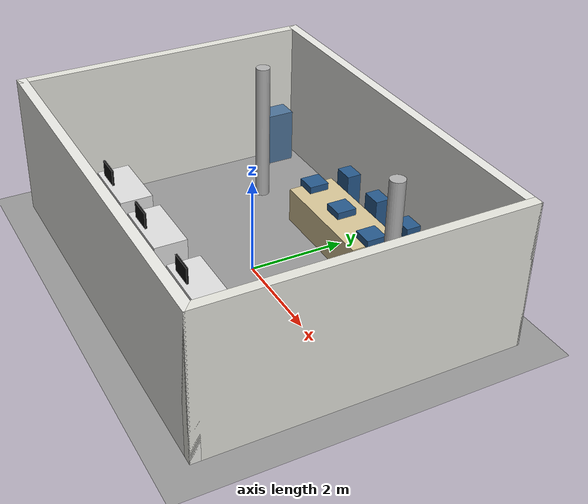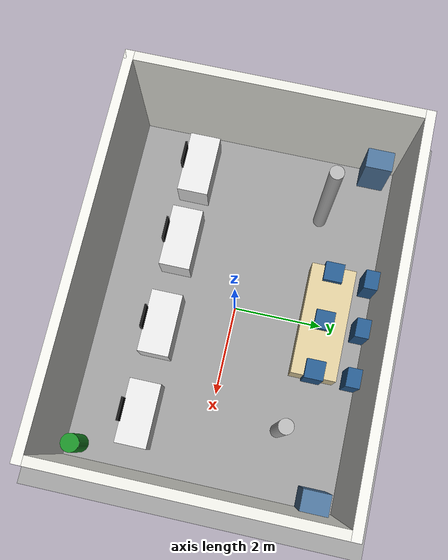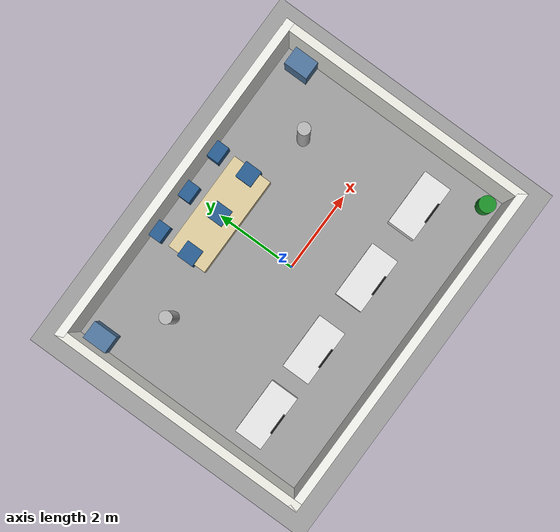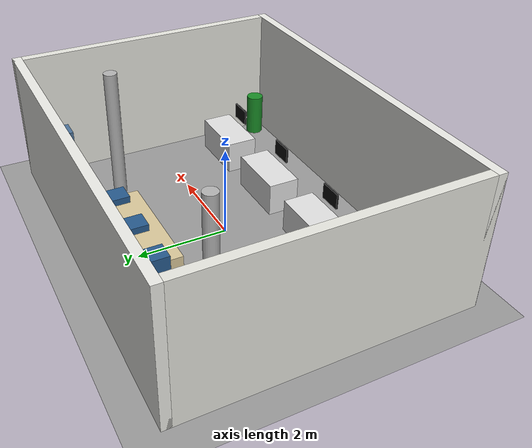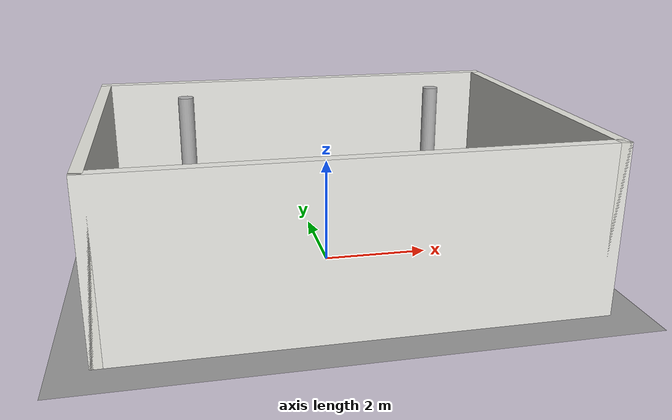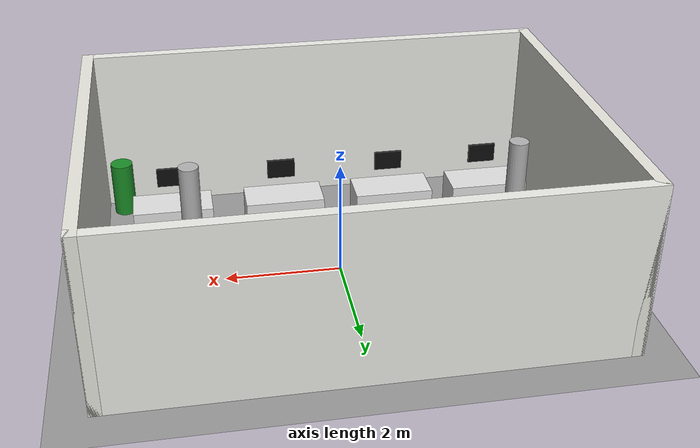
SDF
<?xml version="1.0"?>
<sdf version="1.9">
  <world name="office_world">

    <!-- ── Core plugins ─────────────────────────────────────────────────── -->
    <plugin filename="gz-sim-physics-system"    name="gz::sim::systems::Physics"/>
    <plugin filename="gz-sim-scene-broadcaster-system" name="gz::sim::systems::SceneBroadcaster"/>
    <plugin filename="gz-sim-contact-system"    name="gz::sim::systems::Contact"/>
    <plugin filename="gz-sim-user-commands-system" name="gz::sim::systems::UserCommands"/>
    <plugin filename="gz-sim-sensors-system"    name="gz::sim::systems::Sensors">
      <render_engine>ogre2</render_engine>
    </plugin>

    <physics name="default_physics" type="ode">
      <max_step_size>0.001</max_step_size>
      <real_time_factor>1.0</real_time_factor>
      <real_time_update_rate>1000</real_time_update_rate>
    </physics>
    <gravity>0 0 -9.81</gravity>

    <scene>
      <ambient>0.55 0.55 0.55 1</ambient>
      <background>0.65 0.68 0.7 1</background>
      <shadows>true</shadows>
    </scene>

    <!-- ── Lighting ──────────────────────────────────────────────────────── -->
    <light name="sun" type="directional">
      <pose>0 0 8 0 0 0</pose>
      <diffuse>0.85 0.85 0.85 1</diffuse>
      <specular>0.2 0.2 0.2 1</specular>
      <direction>-0.2 0.1 -0.95</direction>
      <cast_shadows>true</cast_shadows>
    </light>
    <light name="office_light_1" type="point">
      <pose>-2 0 2.7 0 0 0</pose>
      <diffuse>1 0.97 0.92 1</diffuse>
      <specular>0.1 0.1 0.1 1</specular>
      <attenuation><range>6</range><constant>0.1</constant><linear>0.05</linear><quadratic>0.01</quadratic></attenuation>
    </light>
    <light name="office_light_2" type="point">
      <pose>2 0 2.7 0 0 0</pose>
      <diffuse>1 0.97 0.92 1</diffuse>
      <specular>0.1 0.1 0.1 1</specular>
      <attenuation><range>6</range><constant>0.1</constant><linear>0.05</linear><quadratic>0.01</quadratic></attenuation>
    </light>

    <!-- ── Floor ─────────────────────────────────────────────────────────── -->
    <model name="ground_plane">
      <static>true</static>
      <link name="link">
        <collision name="col"><geometry><plane><normal>0 0 1</normal><size>20 20</size></plane></geometry></collision>
        <visual name="vis">
          <geometry><plane><normal>0 0 1</normal><size>20 20</size></plane></geometry>
          <material><ambient>0.6 0.6 0.6 1</ambient><diffuse>0.6 0.6 0.6 1</diffuse></material>
        </visual>
      </link>
    </model>

    <!-- ── Walls (8m x 6m) ────────────────────────────────────────────────── -->
    <model name="wall_north">
      <static>true</static><pose>0 3.1 1.5 0 0 0</pose>
      <link name="link">
        <collision name="col"><geometry><box><size>8.4 0.2 3.0</size></box></geometry></collision>
        <visual name="vis"><geometry><box><size>8.4 0.2 3.0</size></box></geometry>
          <material><ambient>0.92 0.92 0.9 1</ambient><diffuse>0.92 0.92 0.9 1</diffuse></material></visual>
      </link>
    </model>
    <model name="wall_south">
      <static>true</static><pose>0 -3.1 1.5 0 0 0</pose>
      <link name="link">
        <collision name="col"><geometry><box><size>8.4 0.2 3.0</size></box></geometry></collision>
        <visual name="vis"><geometry><box><size>8.4 0.2 3.0</size></box></geometry>
          <material><ambient>0.92 0.92 0.9 1</ambient><diffuse>0.92 0.92 0.9 1</diffuse></material></visual>
      </link>
    </model>
    <model name="wall_east">
      <static>true</static><pose>4.1 0 1.5 0 0 0</pose>
      <link name="link">
        <collision name="col"><geometry><box><size>0.2 6.4 3.0</size></box></geometry></collision>
        <visual name="vis"><geometry><box><size>0.2 6.4 3.0</size></box></geometry>
          <material><ambient>0.90 0.90 0.87 1</ambient><diffuse>0.90 0.90 0.87 1</diffuse></material></visual>
      </link>
    </model>
    <model name="wall_west">
      <static>true</static><pose>-4.1 0 1.5 0 0 0</pose>
      <link name="link">
        <collision name="col"><geometry><box><size>0.2 6.4 3.0</size></box></geometry></collision>
        <visual name="vis"><geometry><box><size>0.2 6.4 3.0</size></box></geometry>
          <material><ambient>0.90 0.90 0.87 1</ambient><diffuse>0.90 0.90 0.87 1</diffuse></material></visual>
      </link>
    </model>

    <!-- ── Structural pillars (good loop closure landmarks) ──────────────── -->
    <model name="pillar_nw">
      <static>true</static><pose>-2.5 1.5 1.5 0 0 0</pose>
      <link name="link">
        <collision name="col"><geometry><cylinder><radius>0.15</radius><length>3.0</length></cylinder></geometry></collision>
        <visual name="vis"><geometry><cylinder><radius>0.15</radius><length>3.0</length></cylinder></geometry>
          <material><ambient>0.7 0.7 0.7 1</ambient><diffuse>0.7 0.7 0.7 1</diffuse></material></visual>
      </link>
    </model>
    <model name="pillar_ne">
      <static>true</static><pose>2.5 1.5 1.5 0 0 0</pose>
      <link name="link">
        <collision name="col"><geometry><cylinder><radius>0.15</radius><length>3.0</length></cylinder></geometry></collision>
        <visual name="vis"><geometry><cylinder><radius>0.15</radius><length>3.0</length></cylinder></geometry>
          <material><ambient>0.7 0.7 0.7 1</ambient><diffuse>0.7 0.7 0.7 1</diffuse></material></visual>
      </link>
    </model>

    <!-- ── Meeting table (north side) ────────────────────────────────────── -->
    <model name="meeting_table">
      <static>true</static><pose>0 2.0 0.375 0 0 0</pose>
      <link name="link">
        <collision name="col"><geometry><box><size>2.5 1.0 0.75</size></box></geometry></collision>
        <visual name="vis"><geometry><box><size>2.5 1.0 0.75</size></box></geometry>
          <material><ambient>0.85 0.78 0.60 1</ambient><diffuse>0.85 0.78 0.60 1</diffuse></material></visual>
      </link>
    </model>
    <!-- 6 chairs around meeting table -->
    <model name="mchair_1"><static>true</static><pose>-1.1 2.0 0.45 0 0 0</pose><link name="link"><collision name="col"><geometry><box><size>0.42 0.42 0.9</size></box></geometry></collision><visual name="vis"><geometry><box><size>0.42 0.42 0.9</size></box></geometry><material><ambient>0.15 0.35 0.55 1</ambient><diffuse>0.15 0.35 0.55 1</diffuse></material></visual></link></model>
    <model name="mchair_2"><static>true</static><pose>0 2.0 0.45 0 0 0</pose><link name="link"><collision name="col"><geometry><box><size>0.42 0.42 0.9</size></box></geometry></collision><visual name="vis"><geometry><box><size>0.42 0.42 0.9</size></box></geometry><material><ambient>0.15 0.35 0.55 1</ambient><diffuse>0.15 0.35 0.55 1</diffuse></material></visual></link></model>
    <model name="mchair_3"><static>true</static><pose>1.1 2.0 0.45 0 0 0</pose><link name="link"><collision name="col"><geometry><box><size>0.42 0.42 0.9</size></box></geometry></collision><visual name="vis"><geometry><box><size>0.42 0.42 0.9</size></box></geometry><material><ambient>0.15 0.35 0.55 1</ambient><diffuse>0.15 0.35 0.55 1</diffuse></material></visual></link></model>
    <model name="mchair_4"><static>true</static><pose>-1.1 2.9 0.45 0 0 0</pose><link name="link"><collision name="col"><geometry><box><size>0.42 0.42 0.9</size></box></geometry></collision><visual name="vis"><geometry><box><size>0.42 0.42 0.9</size></box></geometry><material><ambient>0.15 0.35 0.55 1</ambient><diffuse>0.15 0.35 0.55 1</diffuse></material></visual></link></model>
    <model name="mchair_5"><static>true</static><pose>0 2.9 0.45 0 0 0</pose><link name="link"><collision name="col"><geometry><box><size>0.42 0.42 0.9</size></box></geometry></collision><visual name="vis"><geometry><box><size>0.42 0.42 0.9</size></box></geometry><material><ambient>0.15 0.35 0.55 1</ambient><diffuse>0.15 0.35 0.55 1</diffuse></material></visual></link></model>
    <model name="mchair_6"><static>true</static><pose>1.1 2.9 0.45 0 0 0</pose><link name="link"><collision name="col"><geometry><box><size>0.42 0.42 0.9</size></box></geometry></collision><visual name="vis"><geometry><box><size>0.42 0.42 0.9</size></box></geometry><material><ambient>0.15 0.35 0.55 1</ambient><diffuse>0.15 0.35 0.55 1</diffuse></material></visual></link></model>

    <!-- ── Workstations (south row) ──────────────────────────────────────── -->
    <model name="desk_1"><static>true</static><pose>-3.0 -1.5 0.375 0 0 0</pose><link name="link"><collision name="col"><geometry><box><size>1.4 0.7 0.75</size></box></geometry></collision><visual name="vis"><geometry><box><size>1.4 0.7 0.75</size></box></geometry><material><ambient>0.88 0.88 0.88 1</ambient><diffuse>0.88 0.88 0.88 1</diffuse></material></visual></link></model>
    <model name="desk_2"><static>true</static><pose>-1.2 -1.5 0.375 0 0 0</pose><link name="link"><collision name="col"><geometry><box><size>1.4 0.7 0.75</size></box></geometry></collision><visual name="vis"><geometry><box><size>1.4 0.7 0.75</size></box></geometry><material><ambient>0.88 0.88 0.88 1</ambient><diffuse>0.88 0.88 0.88 1</diffuse></material></visual></link></model>
    <model name="desk_3"><static>true</static><pose>0.8 -1.5 0.375 0 0 0</pose><link name="link"><collision name="col"><geometry><box><size>1.4 0.7 0.75</size></box></geometry></collision><visual name="vis"><geometry><box><size>1.4 0.7 0.75</size></box></geometry><material><ambient>0.88 0.88 0.88 1</ambient><diffuse>0.88 0.88 0.88 1</diffuse></material></visual></link></model>
    <model name="desk_4"><static>true</static><pose>2.8 -1.5 0.375 0 0 0</pose><link name="link"><collision name="col"><geometry><box><size>1.4 0.7 0.75</size></box></geometry></collision><visual name="vis"><geometry><box><size>1.4 0.7 0.75</size></box></geometry><material><ambient>0.88 0.88 0.88 1</ambient><diffuse>0.88 0.88 0.88 1</diffuse></material></visual></link></model>

    <!-- PC monitors on desks (black rectangles — high-contrast visual features) -->
    <model name="monitor_1"><static>true</static><pose>-3.0 -1.82 1.1 0 0 0</pose><link name="link"><collision name="col"><geometry><box><size>0.5 0.04 0.35</size></box></geometry></collision><visual name="vis"><geometry><box><size>0.5 0.04 0.35</size></box></geometry><material><ambient>0.05 0.05 0.05 1</ambient><diffuse>0.05 0.05 0.05 1</diffuse></material></visual></link></model>
    <model name="monitor_2"><static>true</static><pose>-1.2 -1.82 1.1 0 0 0</pose><link name="link"><collision name="col"><geometry><box><size>0.5 0.04 0.35</size></box></geometry></collision><visual name="vis"><geometry><box><size>0.5 0.04 0.35</size></box></geometry><material><ambient>0.05 0.05 0.05 1</ambient><diffuse>0.05 0.05 0.05 1</diffuse></material></visual></link></model>
    <model name="monitor_3"><static>true</static><pose>0.8 -1.82 1.1 0 0 0</pose><link name="link"><collision name="col"><geometry><box><size>0.5 0.04 0.35</size></box></geometry></collision><visual name="vis"><geometry><box><size>0.5 0.04 0.35</size></box></geometry><material><ambient>0.05 0.05 0.05 1</ambient><diffuse>0.05 0.05 0.05 1</diffuse></material></visual></link></model>
    <model name="monitor_4"><static>true</static><pose>2.8 -1.82 1.1 0 0 0</pose><link name="link"><collision name="col"><geometry><box><size>0.5 0.04 0.35</size></box></geometry></collision><visual name="vis"><geometry><box><size>0.5 0.04 0.35</size></box></geometry><material><ambient>0.05 0.05 0.05 1</ambient><diffuse>0.05 0.05 0.05 1</diffuse></material></visual></link></model>

    <!-- ── Filing cabinets (distinct vertical elements) ──────────────────── -->
    <model name="cabinet_1">
      <static>true</static><pose>-3.8 2.5 0.6 0 0 0</pose>
      <link name="link">
        <collision name="col"><geometry><box><size>0.5 0.6 1.2</size></box></geometry></collision>
        <visual name="vis"><geometry><box><size>0.5 0.6 1.2</size></box></geometry>
          <material><ambient>0.3 0.45 0.6 1</ambient><diffuse>0.3 0.45 0.6 1</diffuse></material></visual>
      </link>
    </model>
    <model name="cabinet_2">
      <static>true</static><pose>3.8 2.5 0.6 0 0 0</pose>
      <link name="link">
        <collision name="col"><geometry><box><size>0.5 0.6 1.2</size></box></geometry></collision>
        <visual name="vis"><geometry><box><size>0.5 0.6 1.2</size></box></geometry>
          <material><ambient>0.3 0.45 0.6 1</ambient><diffuse>0.3 0.45 0.6 1</diffuse></material></visual>
      </link>
    </model>

    <!-- ── Whiteboard (white rectangle on south wall — visual landmark) ─── -->
    <model name="whiteboard">
      <static>true</static><pose>1.8 -3.05 1.5 0 0 0</pose>
      <link name="link">
        <collision name="col"><geometry><box><size>1.2 0.04 0.9</size></box></geometry></collision>
        <visual name="vis"><geometry><box><size>1.2 0.04 0.9</size></box></geometry>
          <material><ambient>0.97 0.97 0.97 1</ambient><diffuse>0.97 0.97 0.97 1</diffuse></material></visual>
      </link>
    </model>

    <!-- ── Plant in corner (natural visual element) ────────────────────── -->
    <model name="office_plant">
      <static>true</static><pose>3.7 -2.7 0.5 0 0 0</pose>
      <link name="link">
        <collision name="col"><geometry><cylinder><radius>0.2</radius><length>1.0</length></cylinder></geometry></collision>
        <visual name="vis"><geometry><cylinder><radius>0.2</radius><length>1.0</length></cylinder></geometry>
          <material><ambient>0.1 0.55 0.15 1</ambient><diffuse>0.1 0.55 0.15 1</diffuse></material></visual>
      </link>
    </model>

  </world>
</sdf>
